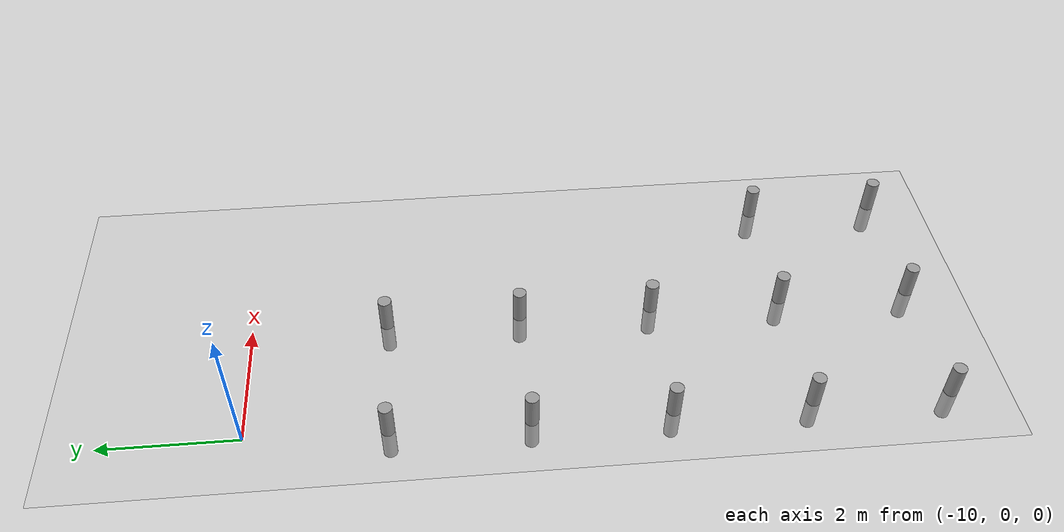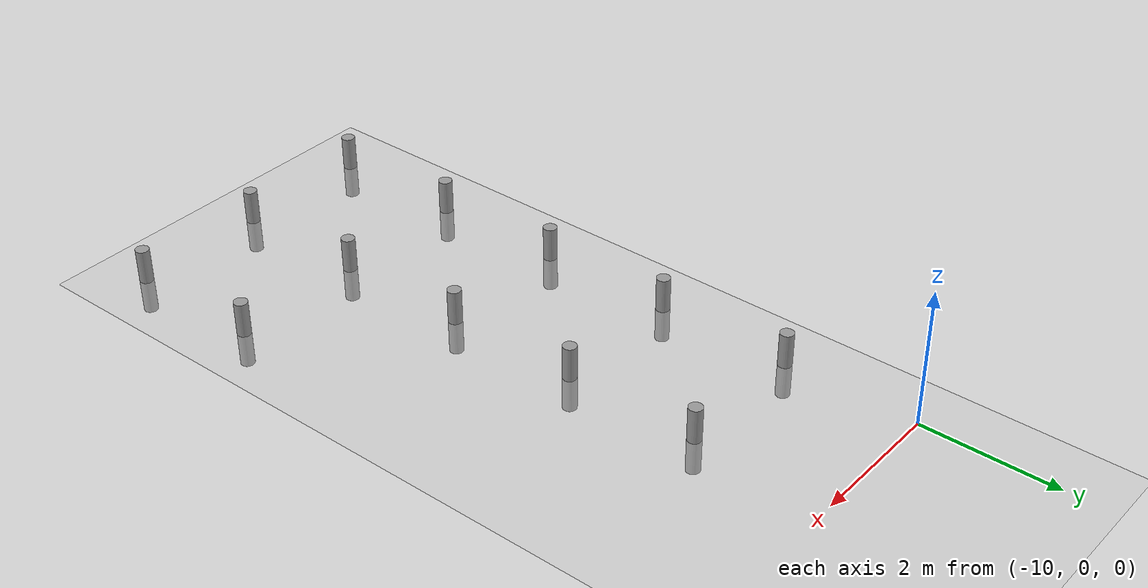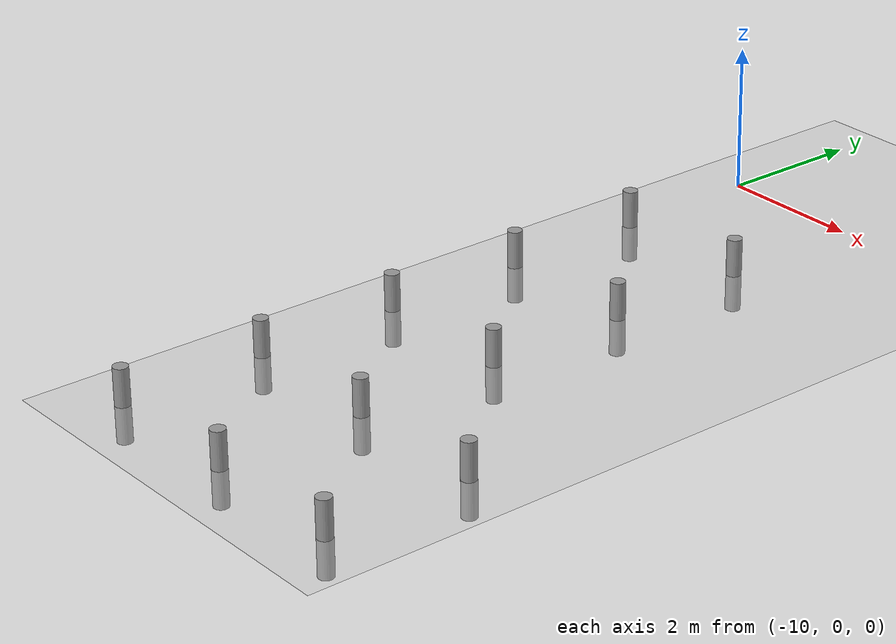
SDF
<sdf version="1.5">
 <world name="default">
  <model name="ground_plane">
   <static>1</static>
   <link name="link">
    <collision name="collision">
     <geometry><plane><normal>0 0 1</normal><size>100 100</size></plane></geometry>
     <surface><friction><ode><mu>100</mu><mu2>50</mu2></ode></friction></surface>
    </collision>
    <visual name="visual">
     <cast_shadows>0</cast_shadows>
     <geometry><plane><normal>0 0 1</normal><size>100 100</size></plane></geometry>
     <material>
      <script><uri>file://media/materials/scripts/gazebo.material</uri><name>Gazebo/Grey</name></script>
     </material>
    </visual>
   </link>
  </model>
  <model name="unit_cylinder_-10_-10">
   <pose>-10 -10 0 0 -0 1.7e-05</pose>
   <link name="link">
    <inertial>
     <mass>1</mass>
     <inertia><ixx>1</ixx><ixy>0</ixy><ixz>0</ixz><iyy>1</iyy><iyz>0</iyz><izz>1</izz></inertia>
    </inertial>
    <collision name="collision">
     <geometry><cylinder><radius>0.1</radius><length>1</length></cylinder></geometry>
    </collision>
    <visual name="visual">
     <geometry><cylinder><radius>0.1</radius><length>1</length></cylinder></geometry>
     <material>
      <script><uri>file://media/materials/scripts/gazebo.material</uri><name>Gazebo/Grey</name></script>
     </material>
    </visual>
   </link>
  </model>
  <model name="unit_cylinder_-10_-8">
   <pose>-10 -8 0 0 -0 1.7e-05</pose>
   <link name="link">
    <inertial>
     <mass>1</mass>
     <inertia><ixx>1</ixx><ixy>0</ixy><ixz>0</ixz><iyy>1</iyy><iyz>0</iyz><izz>1</izz></inertia>
    </inertial>
    <collision name="collision">
     <geometry><cylinder><radius>0.1</radius><length>1</length></cylinder></geometry>
    </collision>
    <visual name="visual">
     <geometry><cylinder><radius>0.1</radius><length>1</length></cylinder></geometry>
     <material>
      <script><uri>file://media/materials/scripts/gazebo.material</uri><name>Gazebo/Grey</name></script>
     </material>
    </visual>
   </link>
  </model>
  <model name="unit_cylinder_-10_-6">
   <pose>-10 -6 0 0 -0 1.7e-05</pose>
   <link name="link">
    <inertial>
     <mass>1</mass>
     <inertia><ixx>1</ixx><ixy>0</ixy><ixz>0</ixz><iyy>1</iyy><iyz>0</iyz><izz>1</izz></inertia>
    </inertial>
    <collision name="collision">
     <geometry><cylinder><radius>0.1</radius><length>1</length></cylinder></geometry>
    </collision>
    <visual name="visual">
     <geometry><cylinder><radius>0.1</radius><length>1</length></cylinder></geometry>
     <material>
      <script><uri>file://media/materials/scripts/gazebo.material</uri><name>Gazebo/Grey</name></script>
     </material>
    </visual>
   </link>
  </model>
  <model name="unit_cylinder_-10_-4">
   <pose>-10 -4 0 0 -0 1.7e-05</pose>
   <link name="link">
    <inertial>
     <mass>1</mass>
     <inertia><ixx>1</ixx><ixy>0</ixy><ixz>0</ixz><iyy>1</iyy><iyz>0</iyz><izz>1</izz></inertia>
    </inertial>
    <collision name="collision">
     <geometry><cylinder><radius>0.1</radius><length>1</length></cylinder></geometry>
    </collision>
    <visual name="visual">
     <geometry><cylinder><radius>0.1</radius><length>1</length></cylinder></geometry>
     <material>
      <script><uri>file://media/materials/scripts/gazebo.material</uri><name>Gazebo/Grey</name></script>
     </material>
    </visual>
   </link>
  </model>
  <model name="unit_cylinder_-10_-2">
   <pose>-10 -2 0 0 -0 1.7e-05</pose>
   <link name="link">
    <inertial>
     <mass>1</mass>
     <inertia><ixx>1</ixx><ixy>0</ixy><ixz>0</ixz><iyy>1</iyy><iyz>0</iyz><izz>1</izz></inertia>
    </inertial>
    <collision name="collision">
     <geometry><cylinder><radius>0.1</radius><length>1</length></cylinder></geometry>
    </collision>
    <visual name="visual">
     <geometry><cylinder><radius>0.1</radius><length>1</length></cylinder></geometry>
     <material>
      <script><uri>file://media/materials/scripts/gazebo.material</uri><name>Gazebo/Grey</name></script>
     </material>
    </visual>
   </link>
  </model>
  <model name="unit_cylinder_-8_-10">
   <pose>-8 -10 0 0 -0 1.7e-05</pose>
   <link name="link">
    <inertial>
     <mass>1</mass>
     <inertia><ixx>1</ixx><ixy>0</ixy><ixz>0</ixz><iyy>1</iyy><iyz>0</iyz><izz>1</izz></inertia>
    </inertial>
    <collision name="collision">
     <geometry><cylinder><radius>0.1</radius><length>1</length></cylinder></geometry>
    </collision>
    <visual name="visual">
     <geometry><cylinder><radius>0.1</radius><length>1</length></cylinder></geometry>
     <material>
      <script><uri>file://media/materials/scripts/gazebo.material</uri><name>Gazebo/Grey</name></script>
     </material>
    </visual>
   </link>
  </model>
  <model name="unit_cylinder_-8_-8">
   <pose>-8 -8 0 0 -0 1.7e-05</pose>
   <link name="link">
    <inertial>
     <mass>1</mass>
     <inertia><ixx>1</ixx><ixy>0</ixy><ixz>0</ixz><iyy>1</iyy><iyz>0</iyz><izz>1</izz></inertia>
    </inertial>
    <collision name="collision">
     <geometry><cylinder><radius>0.1</radius><length>1</length></cylinder></geometry>
    </collision>
    <visual name="visual">
     <geometry><cylinder><radius>0.1</radius><length>1</length></cylinder></geometry>
     <material>
      <script><uri>file://media/materials/scripts/gazebo.material</uri><name>Gazebo/Grey</name></script>
     </material>
    </visual>
   </link>
  </model>
  <model name="unit_cylinder_-8_-6">
   <pose>-8 -6 0 0 -0 1.7e-05</pose>
   <link name="link">
    <inertial>
     <mass>1</mass>
     <inertia><ixx>1</ixx><ixy>0</ixy><ixz>0</ixz><iyy>1</iyy><iyz>0</iyz><izz>1</izz></inertia>
    </inertial>
    <collision name="collision">
     <geometry><cylinder><radius>0.1</radius><length>1</length></cylinder></geometry>
    </collision>
    <visual name="visual">
     <geometry><cylinder><radius>0.1</radius><length>1</length></cylinder></geometry>
     <material>
      <script><uri>file://media/materials/scripts/gazebo.material</uri><name>Gazebo/Grey</name></script>
     </material>
    </visual>
   </link>
  </model>
  <model name="unit_cylinder_-8_-4">
   <pose>-8 -4 0 0 -0 1.7e-05</pose>
   <link name="link">
    <inertial>
     <mass>1</mass>
     <inertia><ixx>1</ixx><ixy>0</ixy><ixz>0</ixz><iyy>1</iyy><iyz>0</iyz><izz>1</izz></inertia>
    </inertial>
    <collision name="collision">
     <geometry><cylinder><radius>0.1</radius><length>1</length></cylinder></geometry>
    </collision>
    <visual name="visual">
     <geometry><cylinder><radius>0.1</radius><length>1</length></cylinder></geometry>
     <material>
      <script><uri>file://media/materials/scripts/gazebo.material</uri><name>Gazebo/Grey</name></script>
     </material>
    </visual>
   </link>
  </model>
  <model name="unit_cylinder_-8_-2">
   <pose>-8 -2 0 0 -0 1.7e-05</pose>
   <link name="link">
    <inertial>
     <mass>1</mass>
     <inertia><ixx>1</ixx><ixy>0</ixy><ixz>0</ixz><iyy>1</iyy><iyz>0</iyz><izz>1</izz></inertia>
    </inertial>
    <collision name="collision">
     <geometry><cylinder><radius>0.1</radius><length>1</length></cylinder></geometry>
    </collision>
    <visual name="visual">
     <geometry><cylinder><radius>0.1</radius><length>1</length></cylinder></geometry>
     <material>
      <script><uri>file://media/materials/scripts/gazebo.material</uri><name>Gazebo/Grey</name></script>
     </material>
    </visual>
   </link>
  </model>
  <model name="unit_cylinder_-6_-10">
   <pose>-6 -10 0 0 -0 1.7e-05</pose>
   <link name="link">
    <inertial>
     <mass>1</mass>
     <inertia><ixx>1</ixx><ixy>0</ixy><ixz>0</ixz><iyy>1</iyy><iyz>0</iyz><izz>1</izz></inertia>
    </inertial>
    <collision name="collision">
     <geometry><cylinder><radius>0.1</radius><length>1</length></cylinder></geometry>
    </collision>
    <visual name="visual">
     <geometry><cylinder><radius>0.1</radius><length>1</length></cylinder></geometry>
     <material>
      <script><uri>file://media/materials/scripts/gazebo.material</uri><name>Gazebo/Grey</name></script>
     </material>
    </visual>
   </link>
  </model>
  <model name="unit_cylinder_-6_-8">
   <pose>-6 -8 0 0 -0 1.7e-05</pose>
   <link name="link">
    <inertial>
     <mass>1</mass>
     <inertia><ixx>1</ixx><ixy>0</ixy><ixz>0</ixz><iyy>1</iyy><iyz>0</iyz><izz>1</izz></inertia>
    </inertial>
    <collision name="collision">
     <geometry><cylinder><radius>0.1</radius><length>1</length></cylinder></geometry>
    </collision>
    <visual name="visual">
     <geometry><cylinder><radius>0.1</radius><length>1</length></cylinder></geometry>
     <material>
      <script><uri>file://media/materials/scripts/gazebo.material</uri><name>Gazebo/Grey</name></script>
     </material>
    </visual>
   </link>
  </model>
 </world>
</sdf>
